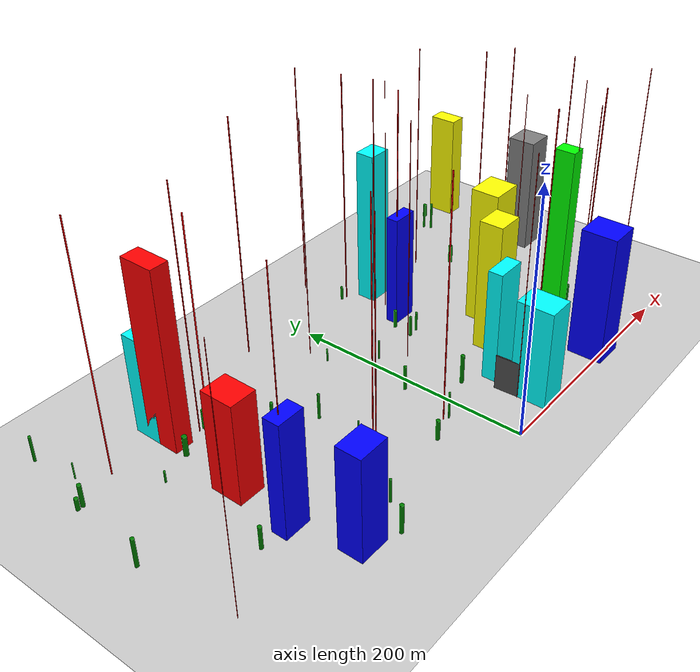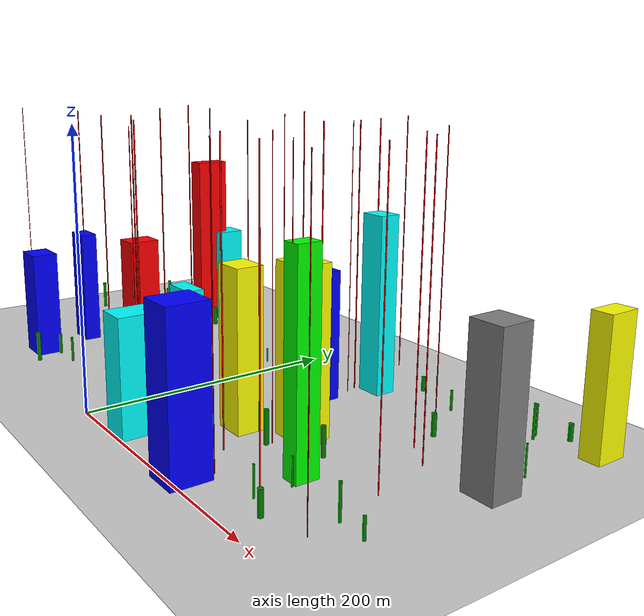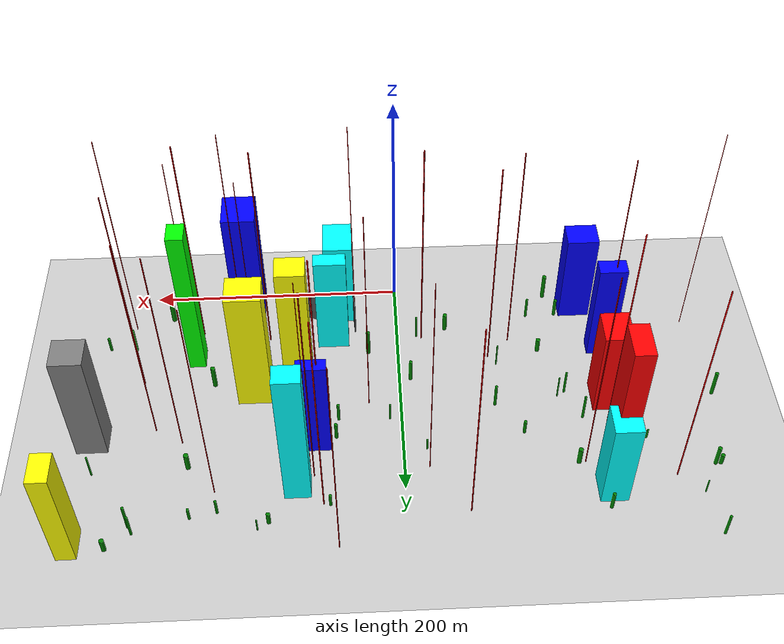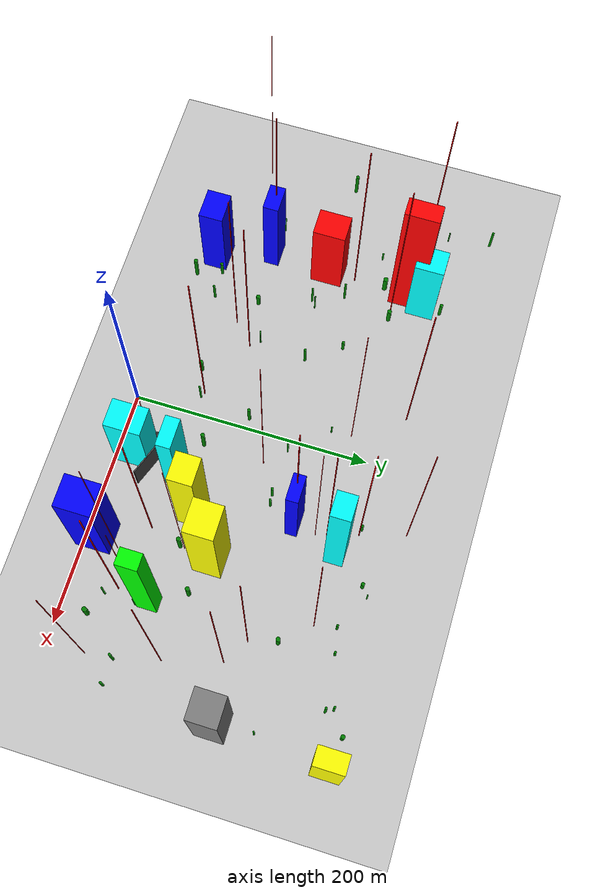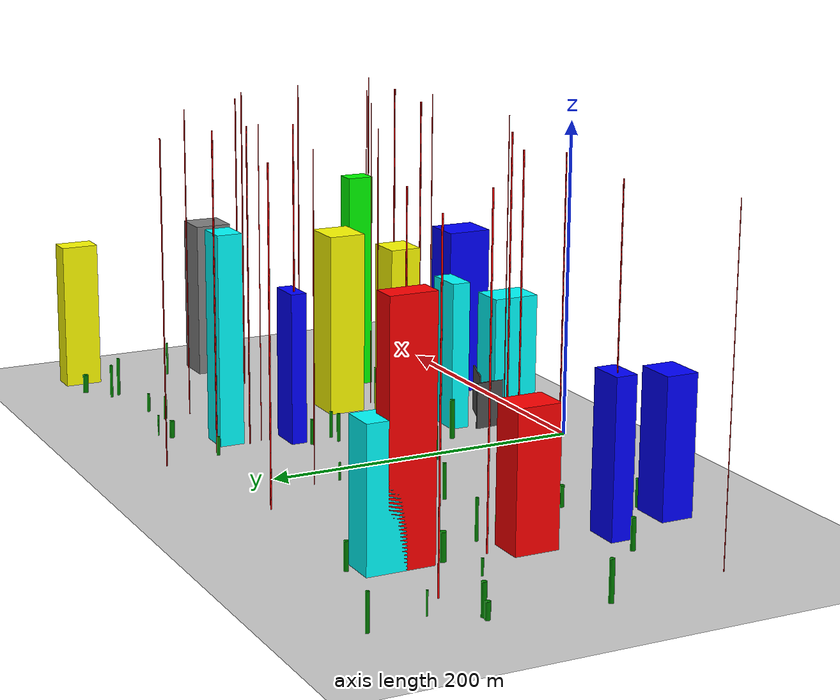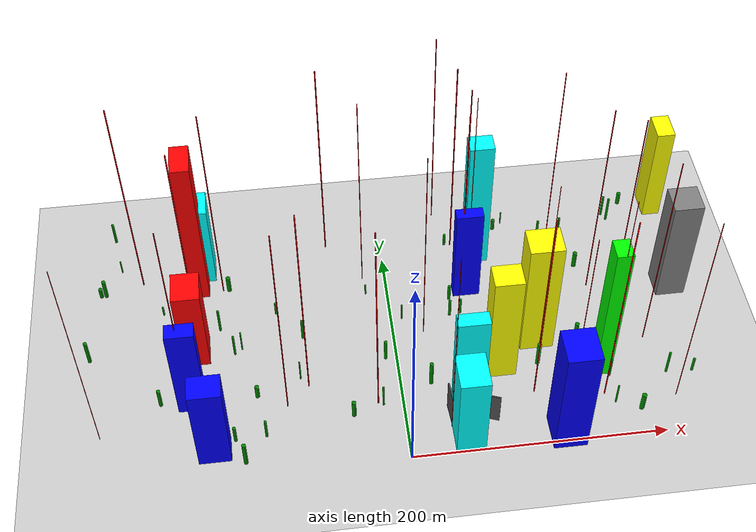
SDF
<sdf version="1.9">
 <world name="obstacles">
  <model name="ground_plane">
   <static>1</static>
   <link name="link">
    <collision name="collision">
     <geometry><plane><normal>0 0 1</normal><size>2000 2000</size></plane></geometry>
    </collision>
    <visual name="visual">
     <geometry><plane><normal>0 0 1</normal><size>2000 2000</size></plane></geometry>
     <material>
      <ambient>0.8 0.8 0.8 1</ambient>
      <diffuse>0.8 0.8 0.8 1</diffuse>
      <specular>0.8 0.8 0.8 1</specular>
     </material>
    </visual>
   </link>
  </model>
  <model name="Skyscraper_1">
   <pose>-165 70 47.0 0 0 0</pose>
   <static>1</static>
   <link name="link">
    <collision name="collision"><geometry><box><size>22 13 94</size></box></geometry></collision>
    <visual name="visual">
     <geometry><box><size>22 13 94</size></box></geometry>
     <material><ambient>0 0 1 1</ambient><diffuse>0 0 1 1</diffuse></material>
    </visual>
   </link>
  </model>
  <model name="Skyscraper_2">
   <pose>66 158 48.0 0 0 0</pose>
   <static>1</static>
   <link name="link">
    <collision name="collision"><geometry><box><size>22 10 96</size></box></geometry></collision>
    <visual name="visual">
     <geometry><box><size>22 10 96</size></box></geometry>
     <material><ambient>0 0 1 1</ambient><diffuse>0 0 1 1</diffuse></material>
    </visual>
   </link>
  </model>
  <model name="Skyscraper_3">
   <pose>244 237 48.0 0 0 0</pose>
   <static>1</static>
   <link name="link">
    <collision name="collision"><geometry><box><size>15 24 96</size></box></geometry></collision>
    <visual name="visual">
     <geometry><box><size>15 24 96</size></box></geometry>
     <material><ambient>1 1 0 1</ambient><diffuse>1 1 0 1</diffuse></material>
    </visual>
   </link>
  </model>
  <model name="Skyscraper_5">
   <pose>-156 192 75.0 0 0 0</pose>
   <static>1</static>
   <link name="link">
    <collision name="collision"><geometry><box><size>15 28 150</size></box></geometry></collision>
    <visual name="visual">
     <geometry><box><size>15 28 150</size></box></geometry>
     <material><ambient>1 0 0 1</ambient><diffuse>1 0 0 1</diffuse></material>
    </visual>
   </link>
  </model>
  <model name="Skyscraper_6">
   <pose>-153 207 42.0 0 0 0</pose>
   <static>1</static>
   <link name="link">
    <collision name="collision"><geometry><box><size>21 24 84</size></box></geometry></collision>
    <visual name="visual">
     <geometry><box><size>21 24 84</size></box></geometry>
     <material><ambient>0 1 1 1</ambient><diffuse>0 1 1 1</diffuse></material>
    </visual>
   </link>
  </model>
  <model name="Skyscraper_8">
   <pose>81 77 56.5 0 0 0</pose>
   <static>1</static>
   <link name="link">
    <collision name="collision"><geometry><box><size>23 20 113</size></box></geometry></collision>
    <visual name="visual">
     <geometry><box><size>23 20 113</size></box></geometry>
     <material><ambient>1 1 0 1</ambient><diffuse>1 1 0 1</diffuse></material>
    </visual>
   </link>
  </model>
  <model name="Skyscraper_10">
   <pose>114 103 59.0 0 0 0</pose>
   <static>1</static>
   <link name="link">
    <collision name="collision"><geometry><box><size>27 24 118</size></box></geometry></collision>
    <visual name="visual">
     <geometry><box><size>27 24 118</size></box></geometry>
     <material><ambient>1 1 0 1</ambient><diffuse>1 1 0 1</diffuse></material>
    </visual>
   </link>
  </model>
  <model name="Skyscraper_11">
   <pose>80 197 67.0 0 0 0</pose>
   <static>1</static>
   <link name="link">
    <collision name="collision"><geometry><box><size>20 16 134</size></box></geometry></collision>
    <visual name="visual">
     <geometry><box><size>20 16 134</size></box></geometry>
     <material><ambient>0 1 1 1</ambient><diffuse>0 1 1 1</diffuse></material>
    </visual>
   </link>
  </model>
  <model name="Skyscraper_12">
   <pose>52 53 47.5 0 0 0</pose>
   <static>1</static>
   <link name="link">
    <collision name="collision"><geometry><box><size>25 12 95</size></box></geometry></collision>
    <visual name="visual">
     <geometry><box><size>25 12 95</size></box></geometry>
     <material><ambient>0 1 1 1</ambient><diffuse>0 1 1 1</diffuse></material>
    </visual>
   </link>
  </model>
  <model name="Skyscraper_13">
   <pose>162 67 71.5 0 0 0</pose>
   <static>1</static>
   <link name="link">
    <collision name="collision"><geometry><box><size>13 17 143</size></box></geometry></collision>
    <visual name="visual">
     <geometry><box><size>13 17 143</size></box></geometry>
     <material><ambient>0 1 0 1</ambient><diffuse>0 1 0 1</diffuse></material>
    </visual>
   </link>
  </model>
  <model name="Skyscraper_14">
   <pose>-149 24 42.5 0 0 0</pose>
   <static>1</static>
   <link name="link">
    <collision name="collision"><geometry><box><size>25 20 85</size></box></geometry></collision>
    <visual name="visual">
     <geometry><box><size>25 20 85</size></box></geometry>
     <material><ambient>0 0 1 1</ambient><diffuse>0 0 1 1</diffuse></material>
    </visual>
   </link>
  </model>
  <model name="Skyscraper_15">
   <pose>-161 121 41.5 0 0 0</pose>
   <static>1</static>
   <link name="link">
    <collision name="collision"><geometry><box><size>22 27 83</size></box></geometry></collision>
    <visual name="visual">
     <geometry><box><size>22 27 83</size></box></geometry>
     <material><ambient>1 0 0 1</ambient><diffuse>1 0 0 1</diffuse></material>
    </visual>
   </link>
  </model>
  <model name="Skyscraper_20">
   <pose>122 9 55.0 0 0 0</pose>
   <static>1</static>
   <link name="link">
    <collision name="collision"><geometry><box><size>26 29 110</size></box></geometry></collision>
    <visual name="visual">
     <geometry><box><size>26 29 110</size></box></geometry>
     <material><ambient>0 0 1 1</ambient><diffuse>0 0 1 1</diffuse></material>
    </visual>
   </link>
  </model>
  <model name="Skyscraper_22">
   <pose>46 16 41.5 0 0 0</pose>
   <static>1</static>
   <link name="link">
    <collision name="collision"><geometry><box><size>23 30 83</size></box></geometry></collision>
    <visual name="visual">
     <geometry><box><size>23 30 83</size></box></geometry>
     <material><ambient>0 1 1 1</ambient><diffuse>0 1 1 1</diffuse></material>
    </visual>
   </link>
  </model>
  <model name="Skyscraper_23">
   <pose>237 145 52.0 0 0 0</pose>
   <static>1</static>
   <link name="link">
    <collision name="collision"><geometry><box><size>24 24 104</size></box></geometry></collision>
    <visual name="visual">
     <geometry><box><size>24 24 104</size></box></geometry>
     <material><ambient>0.5 0.5 0.5 1</ambient><diffuse>0.5 0.5 0.5 1</diffuse></material>
    </visual>
   </link>
  </model>
  <model name="Spire_0">
   <pose>169 151 100.0 0 0 0</pose>
   <static>1</static>
   <link name="link">
    <collision name="collision">
     <geometry><cylinder><radius>0.3851119192326981</radius><length>200</length></cylinder></geometry>
    </collision>
    <visual name="visual">
     <geometry><cylinder><radius>0.3851119192326981</radius><length>200</length></cylinder></geometry>
     <material><ambient>1 0 0 1</ambient><diffuse>1 0 0 1</diffuse></material>
    </visual>
   </link>
  </model>
  <model name="Spire_1">
   <pose>-204 198 100.0 0 0 0</pose>
   <static>1</static>
   <link name="link">
    <collision name="collision">
     <geometry><cylinder><radius>0.47903877447713844</radius><length>200</length></cylinder></geometry>
    </collision>
    <visual name="visual">
     <geometry><cylinder><radius>0.47903877447713844</radius><length>200</length></cylinder></geometry>
     <material><ambient>1 0 0 1</ambient><diffuse>1 0 0 1</diffuse></material>
    </visual>
   </link>
  </model>
  <model name="Spire_2">
   <pose>61 211 100.0 0 0 0</pose>
   <static>1</static>
   <link name="link">
    <collision name="collision">
     <geometry><cylinder><radius>0.4681673765856202</radius><length>200</length></cylinder></geometry>
    </collision>
    <visual name="visual">
     <geometry><cylinder><radius>0.4681673765856202</radius><length>200</length></cylinder></geometry>
     <material><ambient>1 0 0 1</ambient><diffuse>1 0 0 1</diffuse></material>
    </visual>
   </link>
  </model>
  <model name="Spire_5">
   <pose>62 158 100.0 0 0 0</pose>
   <static>1</static>
   <link name="link">
    <collision name="collision">
     <geometry><cylinder><radius>0.47709940659144723</radius><length>200</length></cylinder></geometry>
    </collision>
    <visual name="visual">
     <geometry><cylinder><radius>0.47709940659144723</radius><length>200</length></cylinder></geometry>
     <material><ambient>1 0 0 1</ambient><diffuse>1 0 0 1</diffuse></material>
    </visual>
   </link>
  </model>
  <model name="Spire_6">
   <pose>-47 222 100.0 0 0 0</pose>
   <static>1</static>
   <link name="link">
    <collision name="collision">
     <geometry><cylinder><radius>0.46595526813231736</radius><length>200</length></cylinder></geometry>
    </collision>
    <visual name="visual">
     <geometry><cylinder><radius>0.46595526813231736</radius><length>200</length></cylinder></geometry>
     <material><ambient>1 0 0 1</ambient><diffuse>1 0 0 1</diffuse></material>
    </visual>
   </link>
  </model>
  <model name="Spire_8">
   <pose>128 28 100.0 0 0 0</pose>
   <static>1</static>
   <link name="link">
    <collision name="collision">
     <geometry><cylinder><radius>0.264902842425644</radius><length>200</length></cylinder></geometry>
    </collision>
    <visual name="visual">
     <geometry><cylinder><radius>0.264902842425644</radius><length>200</length></cylinder></geometry>
     <material><ambient>1 0 0 1</ambient><diffuse>1 0 0 1</diffuse></material>
    </visual>
   </link>
  </model>
  <model name="Spire_9">
   <pose>159 40 100.0 0 0 0</pose>
   <static>1</static>
   <link name="link">
    <collision name="collision">
     <geometry><cylinder><radius>0.47379488322787233</radius><length>200</length></cylinder></geometry>
    </collision>
    <visual name="visual">
     <geometry><cylinder><radius>0.47379488322787233</radius><length>200</length></cylinder></geometry>
     <material><ambient>1 0 0 1</ambient><diffuse>1 0 0 1</diffuse></material>
    </visual>
   </link>
  </model>
  <model name="Spire_11">
   <pose>-20 53 100.0 0 0 0</pose>
   <static>1</static>
   <link name="link">
    <collision name="collision">
     <geometry><cylinder><radius>0.491058295464967</radius><length>200</length></cylinder></geometry>
    </collision>
    <visual name="visual">
     <geometry><cylinder><radius>0.491058295464967</radius><length>200</length></cylinder></geometry>
     <material><ambient>1 0 0 1</ambient><diffuse>1 0 0 1</diffuse></material>
    </visual>
   </link>
  </model>
  <model name="Spire_12">
   <pose>-168 71 100.0 0 0 0</pose>
   <static>1</static>
   <link name="link">
    <collision name="collision">
     <geometry><cylinder><radius>0.3735198801167253</radius><length>200</length></cylinder></geometry>
    </collision>
    <visual name="visual">
     <geometry><cylinder><radius>0.3735198801167253</radius><length>200</length></cylinder></geometry>
     <material><ambient>1 0 0 1</ambient><diffuse>1 0 0 1</diffuse></material>
    </visual>
   </link>
  </model>
  <model name="Spire_13">
   <pose>25 119 100.0 0 0 0</pose>
   <static>1</static>
   <link name="link">
    <collision name="collision">
     <geometry><cylinder><radius>0.2927591307399839</radius><length>200</length></cylinder></geometry>
    </collision>
    <visual name="visual">
     <geometry><cylinder><radius>0.2927591307399839</radius><length>200</length></cylinder></geometry>
     <material><ambient>1 0 0 1</ambient><diffuse>1 0 0 1</diffuse></material>
    </visual>
   </link>
  </model>
  <model name="Spire_18">
   <pose>71 177 100.0 0 0 0</pose>
   <static>1</static>
   <link name="link">
    <collision name="collision">
     <geometry><cylinder><radius>0.21156406738607572</radius><length>200</length></cylinder></geometry>
    </collision>
    <visual name="visual">
     <geometry><cylinder><radius>0.21156406738607572</radius><length>200</length></cylinder></geometry>
     <material><ambient>1 0 0 1</ambient><diffuse>1 0 0 1</diffuse></material>
    </visual>
   </link>
  </model>
  <model name="Spire_22">
   <pose>-237 46 100.0 0 0 0</pose>
   <static>1</static>
   <link name="link">
    <collision name="collision">
     <geometry><cylinder><radius>0.20411459557960163</radius><length>200</length></cylinder></geometry>
    </collision>
    <visual name="visual">
     <geometry><cylinder><radius>0.20411459557960163</radius><length>200</length></cylinder></geometry>
     <material><ambient>1 0 0 1</ambient><diffuse>1 0 0 1</diffuse></material>
    </visual>
   </link>
  </model>
  <model name="Spire_25">
   <pose>163 59 100.0 0 0 0</pose>
   <static>1</static>
   <link name="link">
    <collision name="collision">
     <geometry><cylinder><radius>0.21299335867764213</radius><length>200</length></cylinder></geometry>
    </collision>
    <visual name="visual">
     <geometry><cylinder><radius>0.21299335867764213</radius><length>200</length></cylinder></geometry>
     <material><ambient>1 0 0 1</ambient><diffuse>1 0 0 1</diffuse></material>
    </visual>
   </link>
  </model>
  <model name="Spire_26">
   <pose>68 186 100.0 0 0 0</pose>
   <static>1</static>
   <link name="link">
    <collision name="collision">
     <geometry><cylinder><radius>0.40675459533983915</radius><length>200</length></cylinder></geometry>
    </collision>
    <visual name="visual">
     <geometry><cylinder><radius>0.40675459533983915</radius><length>200</length></cylinder></geometry>
     <material><ambient>1 0 0 1</ambient><diffuse>1 0 0 1</diffuse></material>
    </visual>
   </link>
  </model>
  <model name="Spire_27">
   <pose>-19 182 100.0 0 0 0</pose>
   <static>1</static>
   <link name="link">
    <collision name="collision">
     <geometry><cylinder><radius>0.28773696133445054</radius><length>200</length></cylinder></geometry>
    </collision>
    <visual name="visual">
     <geometry><cylinder><radius>0.28773696133445054</radius><length>200</length></cylinder></geometry>
     <material><ambient>1 0 0 1</ambient><diffuse>1 0 0 1</diffuse></material>
    </visual>
   </link>
  </model>
  <model name="Spire_28">
   <pose>104 49 100.0 0 0 0</pose>
   <static>1</static>
   <link name="link">
    <collision name="collision">
     <geometry><cylinder><radius>0.473827415521029</radius><length>200</length></cylinder></geometry>
    </collision>
    <visual name="visual">
     <geometry><cylinder><radius>0.473827415521029</radius><length>200</length></cylinder></geometry>
     <material><ambient>1 0 0 1</ambient><diffuse>1 0 0 1</diffuse></material>
    </visual>
   </link>
  </model>
  <model name="Spire_29">
   <pose>-73 76 100.0 0 0 0</pose>
   <static>1</static>
   <link name="link">
    <collision name="collision">
     <geometry><cylinder><radius>0.46499906401050634</radius><length>200</length></cylinder></geometry>
    </collision>
    <visual name="visual">
     <geometry><cylinder><radius>0.46499906401050634</radius><length>200</length></cylinder></geometry>
     <material><ambient>1 0 0 1</ambient><diffuse>1 0 0 1</diffuse></material>
    </visual>
   </link>
  </model>
  <model name="Spire_31">
   <pose>-91 59 100.0 0 0 0</pose>
   <static>1</static>
   <link name="link">
    <collision name="collision">
     <geometry><cylinder><radius>0.4091152607712939</radius><length>200</length></cylinder></geometry>
    </collision>
    <visual name="visual">
     <geometry><cylinder><radius>0.4091152607712939</radius><length>200</length></cylinder></geometry>
     <material><ambient>1 0 0 1</ambient><diffuse>1 0 0 1</diffuse></material>
    </visual>
   </link>
  </model>
  <model name="Spire_34">
   <pose>215 32 100.0 0 0 0</pose>
   <static>1</static>
   <link name="link">
    <collision name="collision">
     <geometry><cylinder><radius>0.2875692238965125</radius><length>200</length></cylinder></geometry>
    </collision>
    <visual name="visual">
     <geometry><cylinder><radius>0.2875692238965125</radius><length>200</length></cylinder></geometry>
     <material><ambient>1 0 0 1</ambient><diffuse>1 0 0 1</diffuse></material>
    </visual>
   </link>
  </model>
  <model name="Spire_35">
   <pose>-160 145 100.0 0 0 0</pose>
   <static>1</static>
   <link name="link">
    <collision name="collision">
     <geometry><cylinder><radius>0.49343203120130574</radius><length>200</length></cylinder></geometry>
    </collision>
    <visual name="visual">
     <geometry><cylinder><radius>0.49343203120130574</radius><length>200</length></cylinder></geometry>
     <material><ambient>1 0 0 1</ambient><diffuse>1 0 0 1</diffuse></material>
    </visual>
   </link>
  </model>
  <model name="Spire_37">
   <pose>142 197 100.0 0 0 0</pose>
   <static>1</static>
   <link name="link">
    <collision name="collision">
     <geometry><cylinder><radius>0.33149318535785816</radius><length>200</length></cylinder></geometry>
    </collision>
    <visual name="visual">
     <geometry><cylinder><radius>0.33149318535785816</radius><length>200</length></cylinder></geometry>
     <material><ambient>1 0 0 1</ambient><diffuse>1 0 0 1</diffuse></material>
    </visual>
   </link>
  </model>
  <model name="Spire_38">
   <pose>50 248 100.0 0 0 0</pose>
   <static>1</static>
   <link name="link">
    <collision name="collision">
     <geometry><cylinder><radius>0.3699464935165014</radius><length>200</length></cylinder></geometry>
    </collision>
    <visual name="visual">
     <geometry><cylinder><radius>0.3699464935165014</radius><length>200</length></cylinder></geometry>
     <material><ambient>1 0 0 1</ambient><diffuse>1 0 0 1</diffuse></material>
    </visual>
   </link>
  </model>
  <model name="Spire_39">
   <pose>113 80 100.0 0 0 0</pose>
   <static>1</static>
   <link name="link">
    <collision name="collision">
     <geometry><cylinder><radius>0.20116611847402452</radius><length>200</length></cylinder></geometry>
    </collision>
    <visual name="visual">
     <geometry><cylinder><radius>0.20116611847402452</radius><length>200</length></cylinder></geometry>
     <material><ambient>1 0 0 1</ambient><diffuse>1 0 0 1</diffuse></material>
    </visual>
   </link>
  </model>
  <model name="Spire_40">
   <pose>190 138 100.0 0 0 0</pose>
   <static>1</static>
   <link name="link">
    <collision name="collision">
     <geometry><cylinder><radius>0.3767838128567847</radius><length>200</length></cylinder></geometry>
    </collision>
    <visual name="visual">
     <geometry><cylinder><radius>0.3767838128567847</radius><length>200</length></cylinder></geometry>
     <material><ambient>1 0 0 1</ambient><diffuse>1 0 0 1</diffuse></material>
    </visual>
   </link>
  </model>
  <model name="Spire_44">
   <pose>-137 183 100.0 0 0 0</pose>
   <static>1</static>
   <link name="link">
    <collision name="collision">
     <geometry><cylinder><radius>0.412006816319749</radius><length>200</length></cylinder></geometry>
    </collision>
    <visual name="visual">
     <geometry><cylinder><radius>0.412006816319749</radius><length>200</length></cylinder></geometry>
     <material><ambient>1 0 0 1</ambient><diffuse>1 0 0 1</diffuse></material>
    </visual>
   </link>
  </model>
  <model name="Spire_47">
   <pose>34 24 100.0 0 0 0</pose>
   <static>1</static>
   <link name="link">
    <collision name="collision">
     <geometry><cylinder><radius>0.2411957361269375</radius><length>200</length></cylinder></geometry>
    </collision>
    <visual name="visual">
     <geometry><cylinder><radius>0.2411957361269375</radius><length>200</length></cylinder></geometry>
     <material><ambient>1 0 0 1</ambient><diffuse>1 0 0 1</diffuse></material>
    </visual>
   </link>
  </model>
  <model name="Spire_48">
   <pose>203 91 100.0 0 0 0</pose>
   <static>1</static>
   <link name="link">
    <collision name="collision">
     <geometry><cylinder><radius>0.3654331721300669</radius><length>200</length></cylinder></geometry>
    </collision>
    <visual name="visual">
     <geometry><cylinder><radius>0.3654331721300669</radius><length>200</length></cylinder></geometry>
     <material><ambient>1 0 0 1</ambient><diffuse>1 0 0 1</diffuse></material>
    </visual>
   </link>
  </model>
  <model name="Tree_5">
   <pose>139 215 7.5 0 0 0</pose>
   <static>1</static>
   <link name="link">
    <collision name="collision">
     <geometry><cylinder><radius>0.992268738689231</radius><length>15</length></cylinder></geometry>
    </collision>
    <visual name="visual">
     <geometry><cylinder><radius>0.992268738689231</radius><length>15</length></cylinder></geometry>
     <material><ambient>0 0.5 0 1</ambient><diffuse>0 0.5 0 1</diffuse></material>
    </visual>
   </link>
  </model>
  <model name="Tree_7">
   <pose>213 55 12.0 0 0 0</pose>
   <static>1</static>
   <link name="link">
    <collision name="collision">
     <geometry><cylinder><radius>1.0092724083176572</radius><length>24</length></cylinder></geometry>
    </collision>
    <visual name="visual">
     <geometry><cylinder><radius>1.0092724083176572</radius><length>24</length></cylinder></geometry>
     <material><ambient>0 0.5 0 1</ambient><diffuse>0 0.5 0 1</diffuse></material>
    </visual>
   </link>
  </model>
  <model name="Tree_8">
   <pose>-109 33 10.0 0 0 0</pose>
   <static>1</static>
   <link name="link">
    <collision name="collision">
     <geometry><cylinder><radius>1.0057800512753245</radius><length>20</length></cylinder></geometry>
    </collision>
    <visual name="visual">
     <geometry><cylinder><radius>1.0057800512753245</radius><length>20</length></cylinder></geometry>
     <material><ambient>0 0.5 0 1</ambient><diffuse>0 0.5 0 1</diffuse></material>
    </visual>
   </link>
  </model>
  <model name="Tree_9">
   <pose>49 134 9.0 0 0 0</pose>
   <static>1</static>
   <link name="link">
    <collision name="collision">
     <geometry><cylinder><radius>1.1132183289719126</radius><length>18</length></cylinder></geometry>
    </collision>
    <visual name="visual">
     <geometry><cylinder><radius>1.1132183289719126</radius><length>18</length></cylinder></geometry>
     <material><ambient>0 0.5 0 1</ambient><diffuse>0 0.5 0 1</diffuse></material>
    </visual>
   </link>
  </model>
  <model name="Tree_10">
   <pose>109 231 6.5 0 0 0</pose>
   <static>1</static>
   <link name="link">
    <collision name="collision">
     <geometry><cylinder><radius>0.5402390580962825</radius><length>13</length></cylinder></geometry>
    </collision>
    <visual name="visual">
     <geometry><cylinder><radius>0.5402390580962825</radius><length>13</length></cylinder></geometry>
     <material><ambient>0 0.5 0 1</ambient><diffuse>0 0.5 0 1</diffuse></material>
    </visual>
   </link>
  </model>
  <model name="Tree_11">
   <pose>101 225 5.5 0 0 0</pose>
   <static>1</static>
   <link name="link">
    <collision name="collision">
     <geometry><cylinder><radius>1.529085495039706</radius><length>11</length></cylinder></geometry>
    </collision>
    <visual name="visual">
     <geometry><cylinder><radius>1.529085495039706</radius><length>11</length></cylinder></geometry>
     <material><ambient>0 0.5 0 1</ambient><diffuse>0 0.5 0 1</diffuse></material>
    </visual>
   </link>
  </model>
  <model name="Tree_12">
   <pose>56 212 6.0 0 0 0</pose>
   <static>1</static>
   <link name="link">
    <collision name="collision">
     <geometry><cylinder><radius>1.0685253667157792</radius><length>12</length></cylinder></geometry>
    </collision>
    <visual name="visual">
     <geometry><cylinder><radius>1.0685253667157792</radius><length>12</length></cylinder></geometry>
     <material><ambient>0 0.5 0 1</ambient><diffuse>0 0.5 0 1</diffuse></material>
    </visual>
   </link>
  </model>
  <model name="Tree_13">
   <pose>200 230 11.0 0 0 0</pose>
   <static>1</static>
   <link name="link">
    <collision name="collision">
     <geometry><cylinder><radius>0.9260853299380698</radius><length>22</length></cylinder></geometry>
    </collision>
    <visual name="visual">
     <geometry><cylinder><radius>0.9260853299380698</radius><length>22</length></cylinder></geometry>
     <material><ambient>0 0.5 0 1</ambient><diffuse>0 0.5 0 1</diffuse></material>
    </visual>
   </link>
  </model>
  <model name="Tree_15">
   <pose>-114 71 6.5 0 0 0</pose>
   <static>1</static>
   <link name="link">
    <collision name="collision">
     <geometry><cylinder><radius>1.70457057995222</radius><length>13</length></cylinder></geometry>
    </collision>
    <visual name="visual">
     <geometry><cylinder><radius>1.70457057995222</radius><length>13</length></cylinder></geometry>
     <material><ambient>0 0.5 0 1</ambient><diffuse>0 0.5 0 1</diffuse></material>
    </visual>
   </link>
  </model>
  <model name="Tree_17">
   <pose>234 54 7.0 0 0 0</pose>
   <static>1</static>
   <link name="link">
    <collision name="collision">
     <geometry><cylinder><radius>1.079940762126884</radius><length>14</length></cylinder></geometry>
    </collision>
    <visual name="visual">
     <geometry><cylinder><radius>1.079940762126884</radius><length>14</length></cylinder></geometry>
     <material><ambient>0 0.5 0 1</ambient><diffuse>0 0.5 0 1</diffuse></material>
    </visual>
   </link>
  </model>
  <model name="Tree_18">
   <pose>91 84 10.5 0 0 0</pose>
   <static>1</static>
   <link name="link">
    <collision name="collision">
     <geometry><cylinder><radius>1.69559101085574</radius><length>21</length></cylinder></geometry>
    </collision>
    <visual name="visual">
     <geometry><cylinder><radius>1.69559101085574</radius><length>21</length></cylinder></geometry>
     <material><ambient>0 0.5 0 1</ambient><diffuse>0 0.5 0 1</diffuse></material>
    </visual>
   </link>
  </model>
  <model name="Tree_19">
   <pose>-126 11 12.0 0 0 0</pose>
   <static>1</static>
   <link name="link">
    <collision name="collision">
     <geometry><cylinder><radius>1.5889748293536128</radius><length>24</length></cylinder></geometry>
    </collision>
    <visual name="visual">
     <geometry><cylinder><radius>1.5889748293536128</radius><length>24</length></cylinder></geometry>
     <material><ambient>0 0.5 0 1</ambient><diffuse>0 0.5 0 1</diffuse></material>
    </visual>
   </link>
  </model>
  <model name="Tree_22">
   <pose>-228 250 11.0 0 0 0</pose>
   <static>1</static>
   <link name="link">
    <collision name="collision">
     <geometry><cylinder><radius>1.022352138557142</radius><length>22</length></cylinder></geometry>
    </collision>
    <visual name="visual">
     <geometry><cylinder><radius>1.022352138557142</radius><length>22</length></cylinder></geometry>
     <material><ambient>0 0.5 0 1</ambient><diffuse>0 0.5 0 1</diffuse></material>
    </visual>
   </link>
  </model>
  <model name="Tree_23">
   <pose>-222 214 7.0 0 0 0</pose>
   <static>1</static>
   <link name="link">
    <collision name="collision">
     <geometry><cylinder><radius>0.5313077282036859</radius><length>14</length></cylinder></geometry>
    </collision>
    <visual name="visual">
     <geometry><cylinder><radius>0.5313077282036859</radius><length>14</length></cylinder></geometry>
     <material><ambient>0 0.5 0 1</ambient><diffuse>0 0.5 0 1</diffuse></material>
    </visual>
   </link>
  </model>
  <model name="Tree_24">
   <pose>-239 189 5.0 0 0 0</pose>
   <static>1</static>
   <link name="link">
    <collision name="collision">
     <geometry><cylinder><radius>1.5515888105808193</radius><length>10</length></cylinder></geometry>
    </collision>
    <visual name="visual">
     <geometry><cylinder><radius>1.5515888105808193</radius><length>10</length></cylinder></geometry>
     <material><ambient>0 0.5 0 1</ambient><diffuse>0 0.5 0 1</diffuse></material>
    </visual>
   </link>
  </model>
  <model name="Tree_25">
   <pose>235 177 11.0 0 0 0</pose>
   <static>1</static>
   <link name="link">
    <collision name="collision">
     <geometry><cylinder><radius>0.6781188895366408</radius><length>22</length></cylinder></geometry>
    </collision>
    <visual name="visual">
     <geometry><cylinder><radius>0.6781188895366408</radius><length>22</length></cylinder></geometry>
     <material><ambient>0 0.5 0 1</ambient><diffuse>0 0.5 0 1</diffuse></material>
    </visual>
   </link>
  </model>
  <model name="Tree_28">
   <pose>203 224 12.5 0 0 0</pose>
   <static>1</static>
   <link name="link">
    <collision name="collision">
     <geometry><cylinder><radius>1.0151309952357677</radius><length>25</length></cylinder></geometry>
    </collision>
    <visual name="visual">
     <geometry><cylinder><radius>1.0151309952357677</radius><length>25</length></cylinder></geometry>
     <material><ambient>0 0.5 0 1</ambient><diffuse>0 0.5 0 1</diffuse></material>
    </visual>
   </link>
  </model>
  <model name="Tree_29">
   <pose>58 135 8.5 0 0 0</pose>
   <static>1</static>
   <link name="link">
    <collision name="collision">
     <geometry><cylinder><radius>0.9619250031974332</radius><length>17</length></cylinder></geometry>
    </collision>
    <visual name="visual">
     <geometry><cylinder><radius>0.9619250031974332</radius><length>17</length></cylinder></geometry>
     <material><ambient>0 0.5 0 1</ambient><diffuse>0 0.5 0 1</diffuse></material>
    </visual>
   </link>
  </model>
  <model name="Tree_30">
   <pose>167 57 9.5 0 0 0</pose>
   <static>1</static>
   <link name="link">
    <collision name="collision">
     <geometry><cylinder><radius>0.8434904151036007</radius><length>19</length></cylinder></geometry>
    </collision>
    <visual name="visual">
     <geometry><cylinder><radius>0.8434904151036007</radius><length>19</length></cylinder></geometry>
     <material><ambient>0 0.5 0 1</ambient><diffuse>0 0.5 0 1</diffuse></material>
    </visual>
   </link>
  </model>
  <model name="Tree_34">
   <pose>9 135 8.5 0 0 0</pose>
   <static>1</static>
   <link name="link">
    <collision name="collision">
     <geometry><cylinder><radius>0.7428997518002272</radius><length>17</length></cylinder></geometry>
    </collision>
    <visual name="visual">
     <geometry><cylinder><radius>0.7428997518002272</radius><length>17</length></cylinder></geometry>
     <material><ambient>0 0.5 0 1</ambient><diffuse>0 0.5 0 1</diffuse></material>
    </visual>
   </link>
  </model>
  <model name="Tree_35">
   <pose>24 67 12.5 0 0 0</pose>
   <static>1</static>
   <link name="link">
    <collision name="collision">
     <geometry><cylinder><radius>1.5786368300999807</radius><length>25</length></cylinder></geometry>
    </collision>
    <visual name="visual">
     <geometry><cylinder><radius>1.5786368300999807</radius><length>25</length></cylinder></geometry>
     <material><ambient>0 0.5 0 1</ambient><diffuse>0 0.5 0 1</diffuse></material>
    </visual>
   </link>
  </model>
  <model name="Tree_37">
   <pose>159 219 6.0 0 0 0</pose>
   <static>1</static>
   <link name="link">
    <collision name="collision">
     <geometry><cylinder><radius>0.9909157008117542</radius><length>12</length></cylinder></geometry>
    </collision>
    <visual name="visual">
     <geometry><cylinder><radius>0.9909157008117542</radius><length>12</length></cylinder></geometry>
     <material><ambient>0 0.5 0 1</ambient><diffuse>0 0.5 0 1</diffuse></material>
    </visual>
   </link>
  </model>
  <model name="Tree_38">
   <pose>-235 189 9.5 0 0 0</pose>
   <static>1</static>
   <link name="link">
    <collision name="collision">
     <geometry><cylinder><radius>1.5133298954968315</radius><length>19</length></cylinder></geometry>
    </collision>
    <visual name="visual">
     <geometry><cylinder><radius>1.5133298954968315</radius><length>19</length></cylinder></geometry>
     <material><ambient>0 0.5 0 1</ambient><diffuse>0 0.5 0 1</diffuse></material>
    </visual>
   </link>
  </model>
  <model name="Tree_40">
   <pose>-79 84 11.0 0 0 0</pose>
   <static>1</static>
   <link name="link">
    <collision name="collision">
     <geometry><cylinder><radius>0.5744960607884917</radius><length>22</length></cylinder></geometry>
    </collision>
    <visual name="visual">
     <geometry><cylinder><radius>0.5744960607884917</radius><length>22</length></cylinder></geometry>
     <material><ambient>0 0.5 0 1</ambient><diffuse>0 0.5 0 1</diffuse></material>
    </visual>
   </link>
  </model>
  <model name="Tree_42">
   <pose>-150 224 8.5 0 0 0</pose>
   <static>1</static>
   <link name="link">
    <collision name="collision">
     <geometry><cylinder><radius>1.3498253779712084</radius><length>17</length></cylinder></geometry>
    </collision>
    <visual name="visual">
     <geometry><cylinder><radius>1.3498253779712084</radius><length>17</length></cylinder></geometry>
     <material><ambient>0 0.5 0 1</ambient><diffuse>0 0.5 0 1</diffuse></material>
    </visual>
   </link>
  </model>
  <model name="Tree_44">
   <pose>-124 119 11.0 0 0 0</pose>
   <static>1</static>
   <link name="link">
    <collision name="collision">
     <geometry><cylinder><radius>0.5640534922597282</radius><length>22</length></cylinder></geometry>
    </collision>
    <visual name="visual">
     <geometry><cylinder><radius>0.5640534922597282</radius><length>22</length></cylinder></geometry>
     <material><ambient>0 0.5 0 1</ambient><diffuse>0 0.5 0 1</diffuse></material>
    </visual>
   </link>
  </model>
  <model name="Tree_48">
   <pose>-9 96 10.5 0 0 0</pose>
   <static>1</static>
   <link name="link">
    <collision name="collision">
     <geometry><cylinder><radius>1.3046672024917934</radius><length>21</length></cylinder></geometry>
    </collision>
    <visual name="visual">
     <geometry><cylinder><radius>1.3046672024917934</radius><length>21</length></cylinder></geometry>
     <material><ambient>0 0.5 0 1</ambient><diffuse>0 0.5 0 1</diffuse></material>
    </visual>
   </link>
  </model>
  <model name="Tree_52">
   <pose>-141 141 12.5 0 0 0</pose>
   <static>1</static>
   <link name="link">
    <collision name="collision">
     <geometry><cylinder><radius>0.9540332959501008</radius><length>25</length></cylinder></geometry>
    </collision>
    <visual name="visual">
     <geometry><cylinder><radius>0.9540332959501008</radius><length>25</length></cylinder></geometry>
     <material><ambient>0 0.5 0 1</ambient><diffuse>0 0.5 0 1</diffuse></material>
    </visual>
   </link>
  </model>
  <model name="Tree_54">
   <pose>-190 72 9.5 0 0 0</pose>
   <static>1</static>
   <link name="link">
    <collision name="collision">
     <geometry><cylinder><radius>1.4353709804752965</radius><length>19</length></cylinder></geometry>
    </collision>
    <visual name="visual">
     <geometry><cylinder><radius>1.4353709804752965</radius><length>19</length></cylinder></geometry>
     <material><ambient>0 0.5 0 1</ambient><diffuse>0 0.5 0 1</diffuse></material>
    </visual>
   </link>
  </model>
  <model name="Tree_56">
   <pose>-187 163 5.0 0 0 0</pose>
   <static>1</static>
   <link name="link">
    <collision name="collision">
     <geometry><cylinder><radius>0.7424582826600603</radius><length>10</length></cylinder></geometry>
    </collision>
    <visual name="visual">
     <geometry><cylinder><radius>0.7424582826600603</radius><length>10</length></cylinder></geometry>
     <material><ambient>0 0.5 0 1</ambient><diffuse>0 0.5 0 1</diffuse></material>
    </visual>
   </link>
  </model>
  <model name="Tree_57">
   <pose>-74 125 11.0 0 0 0</pose>
   <static>1</static>
   <link name="link">
    <collision name="collision">
     <geometry><cylinder><radius>1.0949234667742835</radius><length>22</length></cylinder></geometry>
    </collision>
    <visual name="visual">
     <geometry><cylinder><radius>1.0949234667742835</radius><length>22</length></cylinder></geometry>
     <material><ambient>0 0.5 0 1</ambient><diffuse>0 0.5 0 1</diffuse></material>
    </visual>
   </link>
  </model>
  <model name="Tree_58">
   <pose>-16 51 11.5 0 0 0</pose>
   <static>1</static>
   <link name="link">
    <collision name="collision">
     <geometry><cylinder><radius>0.7965662832354833</radius><length>23</length></cylinder></geometry>
    </collision>
    <visual name="visual">
     <geometry><cylinder><radius>0.7965662832354833</radius><length>23</length></cylinder></geometry>
     <material><ambient>0 0.5 0 1</ambient><diffuse>0 0.5 0 1</diffuse></material>
    </visual>
   </link>
  </model>
  <model name="Tree_59">
   <pose>-18 165 5.5 0 0 0</pose>
   <static>1</static>
   <link name="link">
    <collision name="collision">
     <geometry><cylinder><radius>0.6767381152184513</radius><length>11</length></cylinder></geometry>
    </collision>
    <visual name="visual">
     <geometry><cylinder><radius>0.6767381152184513</radius><length>11</length></cylinder></geometry>
     <material><ambient>0 0.5 0 1</ambient><diffuse>0 0.5 0 1</diffuse></material>
    </visual>
   </link>
  </model>
  <model name="Tree_62">
   <pose>119 99 9.5 0 0 0</pose>
   <static>1</static>
   <link name="link">
    <collision name="collision">
     <geometry><cylinder><radius>1.477666598853233</radius><length>19</length></cylinder></geometry>
    </collision>
    <visual name="visual">
     <geometry><cylinder><radius>1.477666598853233</radius><length>19</length></cylinder></geometry>
     <material><ambient>0 0.5 0 1</ambient><diffuse>0 0.5 0 1</diffuse></material>
    </visual>
   </link>
  </model>
  <model name="Tree_66">
   <pose>218 242 6.0 0 0 0</pose>
   <static>1</static>
   <link name="link">
    <collision name="collision">
     <geometry><cylinder><radius>1.7519599073396588</radius><length>12</length></cylinder></geometry>
    </collision>
    <visual name="visual">
     <geometry><cylinder><radius>1.7519599073396588</radius><length>12</length></cylinder></geometry>
     <material><ambient>0 0.5 0 1</ambient><diffuse>0 0.5 0 1</diffuse></material>
    </visual>
   </link>
  </model>
  <model name="Tree_69">
   <pose>-133 32 8.5 0 0 0</pose>
   <static>1</static>
   <link name="link">
    <collision name="collision">
     <geometry><cylinder><radius>1.262645480704843</radius><length>17</length></cylinder></geometry>
    </collision>
    <visual name="visual">
     <geometry><cylinder><radius>1.262645480704843</radius><length>17</length></cylinder></geometry>
     <material><ambient>0 0.5 0 1</ambient><diffuse>0 0.5 0 1</diffuse></material>
    </visual>
   </link>
  </model>
  <model name="Tree_70">
   <pose>163 174 8.0 0 0 0</pose>
   <static>1</static>
   <link name="link">
    <collision name="collision">
     <geometry><cylinder><radius>1.8354748043455367</radius><length>16</length></cylinder></geometry>
    </collision>
    <visual name="visual">
     <geometry><cylinder><radius>1.8354748043455367</radius><length>16</length></cylinder></geometry>
     <material><ambient>0 0.5 0 1</ambient><diffuse>0 0.5 0 1</diffuse></material>
    </visual>
   </link>
  </model>
  <model name="Tree_74">
   <pose>-94 153 6.5 0 0 0</pose>
   <static>1</static>
   <link name="link">
    <collision name="collision">
     <geometry><cylinder><radius>1.2376062063500033</radius><length>13</length></cylinder></geometry>
    </collision>
    <visual name="visual">
     <geometry><cylinder><radius>1.2376062063500033</radius><length>13</length></cylinder></geometry>
     <material><ambient>0 0.5 0 1</ambient><diffuse>0 0.5 0 1</diffuse></material>
    </visual>
   </link>
  </model>
  <model name="Tree_77">
   <pose>147 95 10.5 0 0 0</pose>
   <static>1</static>
   <link name="link">
    <collision name="collision">
     <geometry><cylinder><radius>1.7369891779767168</radius><length>21</length></cylinder></geometry>
    </collision>
    <visual name="visual">
     <geometry><cylinder><radius>1.7369891779767168</radius><length>21</length></cylinder></geometry>
     <material><ambient>0 0.5 0 1</ambient><diffuse>0 0.5 0 1</diffuse></material>
    </visual>
   </link>
  </model>
  <model name="Tree_79">
   <pose>51 151 8.0 0 0 0</pose>
   <static>1</static>
   <link name="link">
    <collision name="collision">
     <geometry><cylinder><radius>1.2754751063491392</radius><length>16</length></cylinder></geometry>
    </collision>
    <visual name="visual">
     <geometry><cylinder><radius>1.2754751063491392</radius><length>16</length></cylinder></geometry>
     <material><ambient>0 0.5 0 1</ambient><diffuse>0 0.5 0 1</diffuse></material>
    </visual>
   </link>
  </model>
  <model name="Tree_81">
   <pose>185 23 8.5 0 0 0</pose>
   <static>1</static>
   <link name="link">
    <collision name="collision">
     <geometry><cylinder><radius>1.9423924917368076</radius><length>17</length></cylinder></geometry>
    </collision>
    <visual name="visual">
     <geometry><cylinder><radius>1.9423924917368076</radius><length>17</length></cylinder></geometry>
     <material><ambient>0 0.5 0 1</ambient><diffuse>0 0.5 0 1</diffuse></material>
    </visual>
   </link>
  </model>
  <model name="Tree_84">
   <pose>-160 172 8.5 0 0 0</pose>
   <static>1</static>
   <link name="link">
    <collision name="collision">
     <geometry><cylinder><radius>1.9643408983050439</radius><length>17</length></cylinder></geometry>
    </collision>
    <visual name="visual">
     <geometry><cylinder><radius>1.9643408983050439</radius><length>17</length></cylinder></geometry>
     <material><ambient>0 0.5 0 1</ambient><diffuse>0 0.5 0 1</diffuse></material>
    </visual>
   </link>
  </model>
  <model name="Tree_86">
   <pose>-132 183 8.0 0 0 0</pose>
   <static>1</static>
   <link name="link">
    <collision name="collision">
     <geometry><cylinder><radius>1.7847124231829952</radius><length>16</length></cylinder></geometry>
    </collision>
    <visual name="visual">
     <geometry><cylinder><radius>1.7847124231829952</radius><length>16</length></cylinder></geometry>
     <material><ambient>0 0.5 0 1</ambient><diffuse>0 0.5 0 1</diffuse></material>
    </visual>
   </link>
  </model>
  <model name="Tree_87">
   <pose>112 76 12.0 0 0 0</pose>
   <static>1</static>
   <link name="link">
    <collision name="collision">
     <geometry><cylinder><radius>1.7386352783346803</radius><length>24</length></cylinder></geometry>
    </collision>
    <visual name="visual">
     <geometry><cylinder><radius>1.7386352783346803</radius><length>24</length></cylinder></geometry>
     <material><ambient>0 0.5 0 1</ambient><diffuse>0 0.5 0 1</diffuse></material>
    </visual>
   </link>
  </model>
  <model name="Tree_88">
   <pose>-40 44 8.5 0 0 0</pose>
   <static>1</static>
   <link name="link">
    <collision name="collision">
     <geometry><cylinder><radius>1.6664932269807933</radius><length>17</length></cylinder></geometry>
    </collision>
    <visual name="visual">
     <geometry><cylinder><radius>1.6664932269807933</radius><length>17</length></cylinder></geometry>
     <material><ambient>0 0.5 0 1</ambient><diffuse>0 0.5 0 1</diffuse></material>
    </visual>
   </link>
  </model>
  <model name="Tree_89">
   <pose>-130 115 11.5 0 0 0</pose>
   <static>1</static>
   <link name="link">
    <collision name="collision">
     <geometry><cylinder><radius>0.8718327192306248</radius><length>23</length></cylinder></geometry>
    </collision>
    <visual name="visual">
     <geometry><cylinder><radius>0.8718327192306248</radius><length>23</length></cylinder></geometry>
     <material><ambient>0 0.5 0 1</ambient><diffuse>0 0.5 0 1</diffuse></material>
    </visual>
   </link>
  </model>
  <model name="Tree_91">
   <pose>-247 122 12.0 0 0 0</pose>
   <static>1</static>
   <link name="link">
    <collision name="collision">
     <geometry><cylinder><radius>1.431611844453697</radius><length>24</length></cylinder></geometry>
    </collision>
    <visual name="visual">
     <geometry><cylinder><radius>1.431611844453697</radius><length>24</length></cylinder></geometry>
     <material><ambient>0 0.5 0 1</ambient><diffuse>0 0.5 0 1</diffuse></material>
    </visual>
   </link>
  </model>
  <model name="Tree_99">
   <pose>166 31 10.5 0 0 0</pose>
   <static>1</static>
   <link name="link">
    <collision name="collision">
     <geometry><cylinder><radius>0.7185513605351526</radius><length>21</length></cylinder></geometry>
    </collision>
    <visual name="visual">
     <geometry><cylinder><radius>0.7185513605351526</radius><length>21</length></cylinder></geometry>
     <material><ambient>0 0.5 0 1</ambient><diffuse>0 0.5 0 1</diffuse></material>
    </visual>
   </link>
  </model>
  <model name="Wall_1">
   <pose>35 25 15 0 0 0.059504435497872155</pose>
   <static>1</static>
   <link name="link">
    <collision name="collision"><geometry><box><size>1 38 30</size></box></geometry></collision>
    <visual name="visual">
     <geometry><box><size>1 38 30</size></box></geometry>
     <material><ambient>0.3 0.3 0.3 1</ambient><diffuse>0.3 0.3 0.3 1</diffuse></material>
    </visual>
   </link>
  </model>
  <model name="Wall_2">
   <pose>59 30 15 0 0 1.2163635438164502</pose>
   <static>1</static>
   <link name="link">
    <collision name="collision"><geometry><box><size>1 27 30</size></box></geometry></collision>
    <visual name="visual">
     <geometry><box><size>1 27 30</size></box></geometry>
     <material><ambient>0.3 0.3 0.3 1</ambient><diffuse>0.3 0.3 0.3 1</diffuse></material>
    </visual>
   </link>
  </model>
  <model name="obs_topdown">
   <static>true</static>
   <pose>12.5 12.5 86 0 1.4800 1.5708</pose>
   <link name="l">
    <sensor name="c" type="camera">
     <camera>
      <horizontal_fov>1.05</horizontal_fov>
      <image><width>1920</width><height>1080</height></image>
      <clip><near>0.1</near><far>1200</far></clip>
     </camera>
     <always_on>1</always_on>
     <update_rate>2</update_rate>
     <topic>obs/topdown</topic>
    </sensor>
   </link>
  </model>
 </world>
</sdf>
